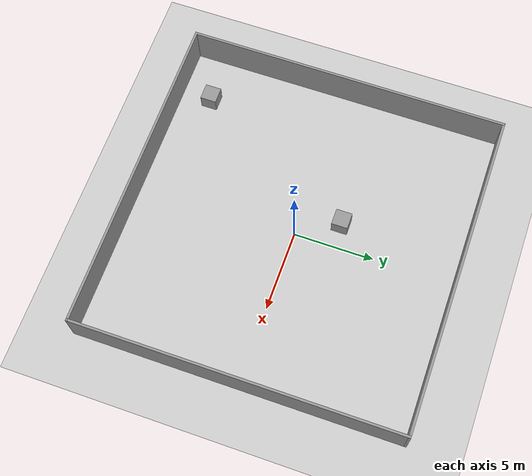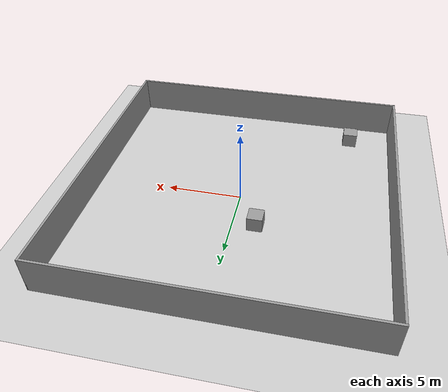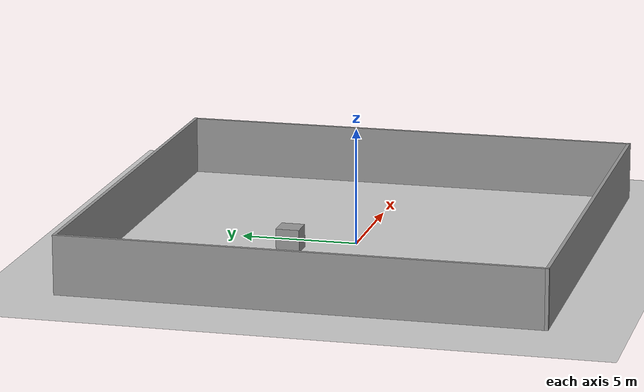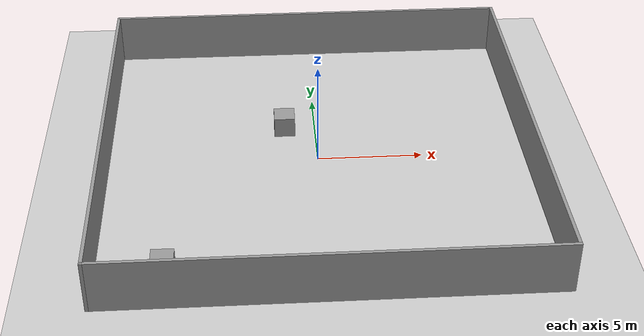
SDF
<sdf version="1.5">
 <world name="default">
  <include><uri>model://sun</uri></include>
  <include><uri>model://ground_plane</uri></include>
  <model name="unit_box_0">
   <pose>-1.5 2.5 0.5 0 -0 0</pose>
   <link name="link">
    <inertial>
     <mass>1</mass>
     <inertia>
      <ixx>0.166667</ixx>
      <ixy>0</ixy>
      <ixz>0</ixz>
      <iyy>0.166667</iyy>
      <iyz>0</iyz>
      <izz>0.166667</izz>
     </inertia>
    </inertial>
    <collision name="collision"><geometry><box><size>1 1 1</size></box></geometry></collision>
    <visual name="visual">
     <geometry><box><size>1 1 1</size></box></geometry>
     <material>
      <script><name>Gazebo/Grey</name><uri>file://media/materials/scripts/gazebo.material</uri></script>
     </material>
    </visual>
   </link>
  </model>
  <model name="unit_box">
   <pose>-7 -8 0.5 0 -0 0</pose>
   <link name="link">
    <inertial>
     <mass>1</mass>
     <inertia>
      <ixx>0.166667</ixx>
      <ixy>0</ixy>
      <ixz>0</ixz>
      <iyy>0.166667</iyy>
      <iyz>0</iyz>
      <izz>0.166667</izz>
     </inertia>
    </inertial>
    <collision name="collision"><geometry><box><size>1 1 1</size></box></geometry></collision>
    <visual name="visual">
     <geometry><box><size>1 1 1</size></box></geometry>
     <material>
      <script><name>Gazebo/Grey</name><uri>file://media/materials/scripts/gazebo.material</uri></script>
     </material>
    </visual>
   </link>
  </model>
  <model name="env_3.world">
   <link name="Wall_0">
    <collision name="Wall_0_Collision">
     <geometry><box><size>20.15 0.15 2.5</size></box></geometry>
     <pose>0 0 1.25 0 -0 0</pose>
    </collision>
    <visual name="Wall_0_Visual">
     <pose>0 0 1.25 0 -0 0</pose>
     <geometry><box><size>20.15 0.15 2.5</size></box></geometry>
     <material>
      <script><uri>file://media/materials/scripts/gazebo.material</uri><name>Gazebo/Grey</name></script>
      <ambient>1 1 1 1</ambient>
     </material>
     <meta><layer>0</layer></meta>
    </visual>
    <pose>0 -10 0 0 -0 3.14159</pose>
   </link>
   <link name="Wall_2">
    <collision name="Wall_2_Collision">
     <geometry><box><size>20.15 0.15 2.5</size></box></geometry>
     <pose>0 0 1.25 0 -0 0</pose>
    </collision>
    <visual name="Wall_2_Visual">
     <pose>0 0 1.25 0 -0 0</pose>
     <geometry><box><size>20.15 0.15 2.5</size></box></geometry>
     <material>
      <script><uri>file://media/materials/scripts/gazebo.material</uri><name>Gazebo/Grey</name></script>
      <ambient>1 1 1 1</ambient>
     </material>
     <meta><layer>0</layer></meta>
    </visual>
    <pose>10 0 0 0 -0 1.5708</pose>
   </link>
   <link name="Wall_4">
    <collision name="Wall_4_Collision">
     <geometry><box><size>20.15 0.15 2.5</size></box></geometry>
     <pose>0 0 1.25 0 -0 0</pose>
    </collision>
    <visual name="Wall_4_Visual">
     <pose>0 0 1.25 0 -0 0</pose>
     <geometry><box><size>20.15 0.15 2.5</size></box></geometry>
     <material>
      <script><uri>file://media/materials/scripts/gazebo.material</uri><name>Gazebo/Grey</name></script>
      <ambient>1 1 1 1</ambient>
     </material>
     <meta><layer>0</layer></meta>
    </visual>
    <pose>-10 0 0 0 -0 1.5708</pose>
   </link>
   <link name="Wall_6">
    <collision name="Wall_6_Collision">
     <geometry><box><size>20.15 0.15 2.5</size></box></geometry>
     <pose>0 0 1.25 0 -0 0</pose>
    </collision>
    <visual name="Wall_6_Visual">
     <pose>0 0 1.25 0 -0 0</pose>
     <geometry><box><size>20.15 0.15 2.5</size></box></geometry>
     <material>
      <script><uri>file://media/materials/scripts/gazebo.material</uri><name>Gazebo/Grey</name></script>
      <ambient>1 1 1 1</ambient>
     </material>
     <meta><layer>0</layer></meta>
    </visual>
    <pose>0 10 0 0 -0 0</pose>
   </link>
   <static>1</static>
  </model>
 </world>
</sdf>
